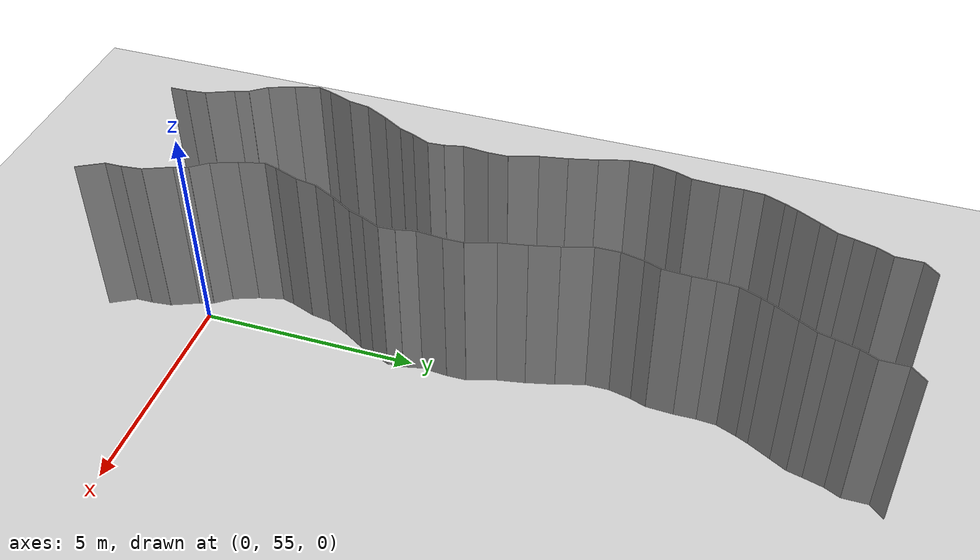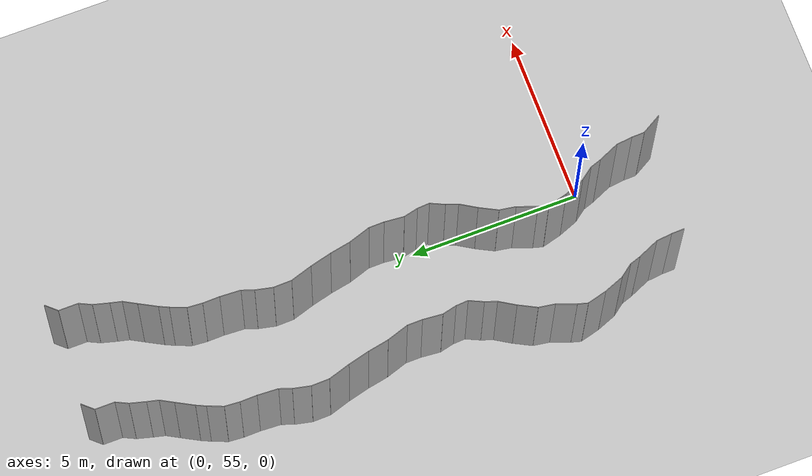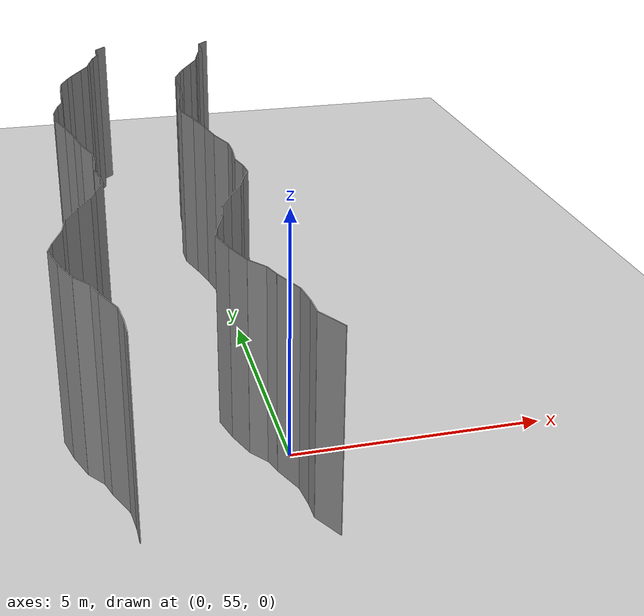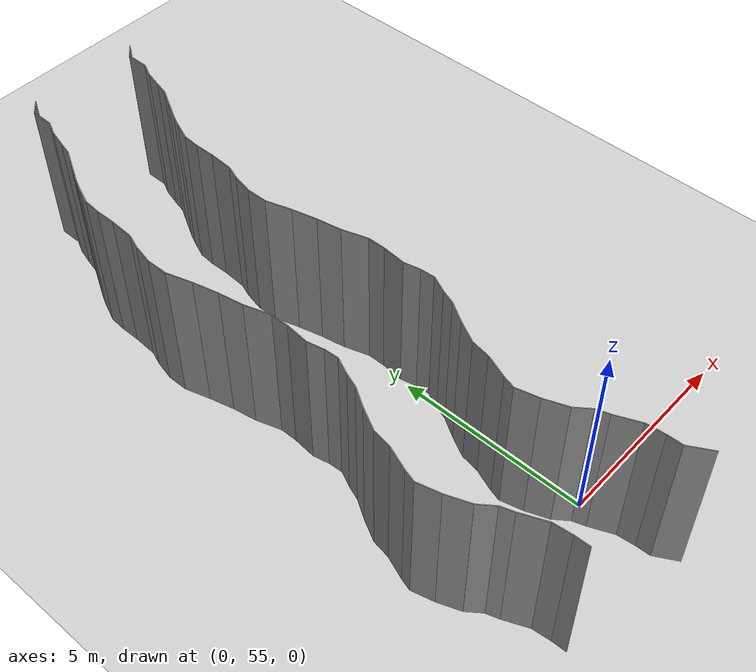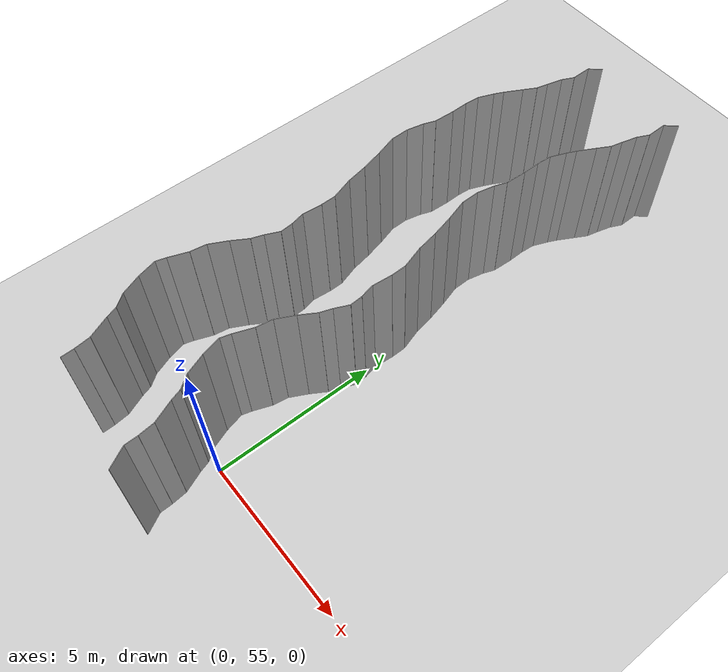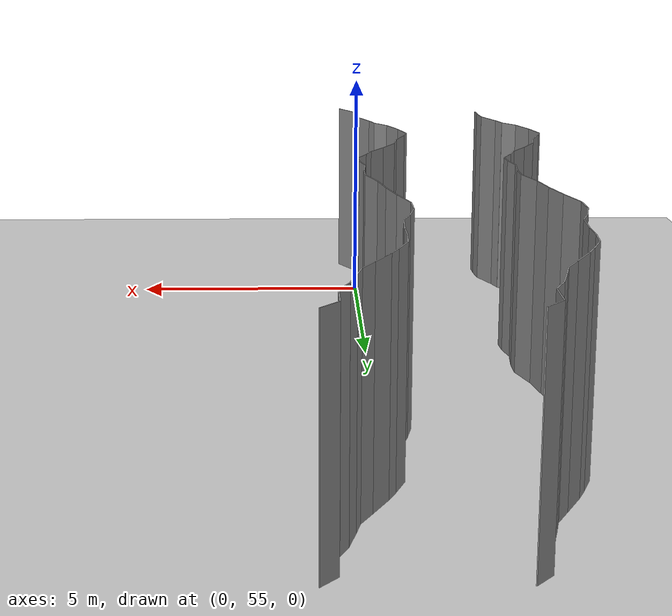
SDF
<sdf version="1.6">
 <world name="default">
  <model name="ground_plane">
   <static>1</static>
   <link name="link">
    <collision name="collision">
     <geometry><plane><normal>0 0 1</normal><size>200 200</size></plane></geometry>
     <surface><friction><ode><mu>100</mu><mu2>50</mu2></ode></friction></surface>
    </collision>
    <visual name="visual">
     <cast_shadows>0</cast_shadows>
     <geometry><plane><normal>0 0 1</normal><size>200 200</size></plane></geometry>
     <material>
      <script><uri>file://media/materials/scripts/gazebo.material</uri><name>Gazebo/Grey</name></script>
     </material>
    </visual>
   </link>
   <pose>0 100 0 0 -0 0</pose>
  </model>
  <model name="wall_225">
   <static>1</static>
   <pose>0.149944866546 52.8491950254 2 0 0 0.513343728631</pose>
   <link name="link">
    <collision name="collision"><geometry><box><size>0.02 0.649106825062 4</size></box></geometry></collision>
    <visual name="visual">
     <material>
      <script><name>Gazebo/Grey</name><uri>file://media/materials/scripts/gazebo.material</uri></script>
     </material>
     <geometry><box><size>0.02 0.649106825062 4</size></box></geometry>
    </visual>
   </link>
  </model>
  <model name="wall_226">
   <static>1</static>
   <pose>-3.01377925756 53.3214859877 2 0 0 0.0228809511871</pose>
   <link name="link">
    <collision name="collision"><geometry><box><size>0.02 0.379239499953 4</size></box></geometry></collision>
    <visual name="visual">
     <material>
      <script><name>Gazebo/Grey</name><uri>file://media/materials/scripts/gazebo.material</uri></script>
     </material>
     <geometry><box><size>0.02 0.379239499953 4</size></box></geometry>
    </visual>
   </link>
  </model>
  <model name="wall_227">
   <static>1</static>
   <pose>-0.0137792575616 53.3214859877 2 0 0 0.0228809511871</pose>
   <link name="link">
    <collision name="collision"><geometry><box><size>0.02 0.379239499953 4</size></box></geometry></collision>
    <visual name="visual">
     <material>
      <script><name>Gazebo/Grey</name><uri>file://media/materials/scripts/gazebo.material</uri></script>
     </material>
     <geometry><box><size>0.02 0.379239499953 4</size></box></geometry>
    </visual>
   </link>
  </model>
  <model name="wall_228">
   <static>1</static>
   <pose>-3.04320351989 53.7433817089 2 0 0 0.107560865783</pose>
   <link name="link">
    <collision name="collision"><geometry><box><size>0.02 0.467352083358 4</size></box></geometry></collision>
    <visual name="visual">
     <material>
      <script><name>Gazebo/Grey</name><uri>file://media/materials/scripts/gazebo.material</uri></script>
     </material>
     <geometry><box><size>0.02 0.467352083358 4</size></box></geometry>
    </visual>
   </link>
  </model>
  <model name="wall_229">
   <static>1</static>
   <pose>-0.0432035198901 53.7433817089 2 0 0 0.107560865783</pose>
   <link name="link">
    <collision name="collision"><geometry><box><size>0.02 0.467352083358 4</size></box></geometry></collision>
    <visual name="visual">
     <material>
      <script><name>Gazebo/Grey</name><uri>file://media/materials/scripts/gazebo.material</uri></script>
     </material>
     <geometry><box><size>0.02 0.467352083358 4</size></box></geometry>
    </visual>
   </link>
  </model>
  <model name="wall_230">
   <static>1</static>
   <pose>-3.19846778739 54.2792250066 2 0 0 0.405168139406</pose>
   <link name="link">
    <collision name="collision"><geometry><box><size>0.02 0.660513076087 4</size></box></geometry></collision>
    <visual name="visual">
     <material>
      <script><name>Gazebo/Grey</name><uri>file://media/materials/scripts/gazebo.material</uri></script>
     </material>
     <geometry><box><size>0.02 0.660513076087 4</size></box></geometry>
    </visual>
   </link>
  </model>
  <model name="wall_231">
   <static>1</static>
   <pose>-0.198467787391 54.2792250066 2 0 0 0.405168139406</pose>
   <link name="link">
    <collision name="collision"><geometry><box><size>0.02 0.660513076087 4</size></box></geometry></collision>
    <visual name="visual">
     <material>
      <script><name>Gazebo/Grey</name><uri>file://media/materials/scripts/gazebo.material</uri></script>
     </material>
     <geometry><box><size>0.02 0.660513076087 4</size></box></geometry>
    </visual>
   </link>
  </model>
  <model name="wall_232">
   <static>1</static>
   <pose>-3.38087966449 54.7423450676 2 0 0 0.316286510836</pose>
   <link name="link">
    <collision name="collision"><geometry><box><size>0.02 0.33586462782 4</size></box></geometry></collision>
    <visual name="visual">
     <material>
      <script><name>Gazebo/Grey</name><uri>file://media/materials/scripts/gazebo.material</uri></script>
     </material>
     <geometry><box><size>0.02 0.33586462782 4</size></box></geometry>
    </visual>
   </link>
  </model>
  <model name="wall_233">
   <static>1</static>
   <pose>-0.380879664487 54.7423450676 2 0 0 0.316286510836</pose>
   <link name="link">
    <collision name="collision"><geometry><box><size>0.02 0.33586462782 4</size></box></geometry></collision>
    <visual name="visual">
     <material>
      <script><name>Gazebo/Grey</name><uri>file://media/materials/scripts/gazebo.material</uri></script>
     </material>
     <geometry><box><size>0.02 0.33586462782 4</size></box></geometry>
    </visual>
   </link>
  </model>
  <model name="wall_234">
   <static>1</static>
   <pose>-3.56806964536 55.0815962635 2 0 0 0.644283653779</pose>
   <link name="link">
    <collision name="collision"><geometry><box><size>0.02 0.449385953446 4</size></box></geometry></collision>
    <visual name="visual">
     <material>
      <script><name>Gazebo/Grey</name><uri>file://media/materials/scripts/gazebo.material</uri></script>
     </material>
     <geometry><box><size>0.02 0.449385953446 4</size></box></geometry>
    </visual>
   </link>
  </model>
  <model name="wall_235">
   <static>1</static>
   <pose>-0.568069645365 55.0815962635 2 0 0 0.644283653779</pose>
   <link name="link">
    <collision name="collision"><geometry><box><size>0.02 0.449385953446 4</size></box></geometry></collision>
    <visual name="visual">
     <material>
      <script><name>Gazebo/Grey</name><uri>file://media/materials/scripts/gazebo.material</uri></script>
     </material>
     <geometry><box><size>0.02 0.449385953446 4</size></box></geometry>
    </visual>
   </link>
  </model>
  <model name="wall_236">
   <static>1</static>
   <pose>-3.81201777938 55.5483631325 2 0 0 0.362802655101</pose>
   <link name="link">
    <collision name="collision"><geometry><box><size>0.02 0.614218091026 4</size></box></geometry></collision>
    <visual name="visual">
     <material>
      <script><name>Gazebo/Grey</name><uri>file://media/materials/scripts/gazebo.material</uri></script>
     </material>
     <geometry><box><size>0.02 0.614218091026 4</size></box></geometry>
    </visual>
   </link>
  </model>
  <model name="wall_237">
   <static>1</static>
   <pose>-0.812017779385 55.5483631325 2 0 0 0.362802655101</pose>
   <link name="link">
    <collision name="collision"><geometry><box><size>0.02 0.614218091026 4</size></box></geometry></collision>
    <visual name="visual">
     <material>
      <script><name>Gazebo/Grey</name><uri>file://media/materials/scripts/gazebo.material</uri></script>
     </material>
     <geometry><box><size>0.02 0.614218091026 4</size></box></geometry>
    </visual>
   </link>
  </model>
  <model name="wall_238">
   <static>1</static>
   <pose>-3.99297944603 56.1185685923 2 0 0 0.248957947292</pose>
   <link name="link">
    <collision name="collision"><geometry><box><size>0.02 0.584185445969 4</size></box></geometry></collision>
    <visual name="visual">
     <material>
      <script><name>Gazebo/Grey</name><uri>file://media/materials/scripts/gazebo.material</uri></script>
     </material>
     <geometry><box><size>0.02 0.584185445969 4</size></box></geometry>
    </visual>
   </link>
  </model>
  <model name="wall_239">
   <static>1</static>
   <pose>-0.992979446029 56.1185685923 2 0 0 0.248957947292</pose>
   <link name="link">
    <collision name="collision"><geometry><box><size>0.02 0.584185445969 4</size></box></geometry></collision>
    <visual name="visual">
     <material>
      <script><name>Gazebo/Grey</name><uri>file://media/materials/scripts/gazebo.material</uri></script>
     </material>
     <geometry><box><size>0.02 0.584185445969 4</size></box></geometry>
    </visual>
   </link>
  </model>
  <model name="wall_240">
   <static>1</static>
   <pose>-4.02407525101 56.5490373277 2 0 0 -0.270536628729</pose>
   <link name="link">
    <collision name="collision"><geometry><box><size>0.02 0.305888528537 4</size></box></geometry></collision>
    <visual name="visual">
     <material>
      <script><name>Gazebo/Grey</name><uri>file://media/materials/scripts/gazebo.material</uri></script>
     </material>
     <geometry><box><size>0.02 0.305888528537 4</size></box></geometry>
    </visual>
   </link>
  </model>
  <model name="wall_241">
   <static>1</static>
   <pose>-1.02407525101 56.5490373277 2 0 0 -0.270536628729</pose>
   <link name="link">
    <collision name="collision"><geometry><box><size>0.02 0.305888528537 4</size></box></geometry></collision>
    <visual name="visual">
     <material>
      <script><name>Gazebo/Grey</name><uri>file://media/materials/scripts/gazebo.material</uri></script>
     </material>
     <geometry><box><size>0.02 0.305888528537 4</size></box></geometry>
    </visual>
   </link>
  </model>
  <model name="wall_242">
   <static>1</static>
   <pose>-3.87671459192 56.9803281657 2 0 0 -0.358833820466</pose>
   <link name="link">
    <collision name="collision"><geometry><box><size>0.02 0.606445363981 4</size></box></geometry></collision>
    <visual name="visual">
     <material>
      <script><name>Gazebo/Grey</name><uri>file://media/materials/scripts/gazebo.material</uri></script>
     </material>
     <geometry><box><size>0.02 0.606445363981 4</size></box></geometry>
    </visual>
   </link>
  </model>
  <model name="wall_243">
   <static>1</static>
   <pose>-0.876714591916 56.9803281657 2 0 0 -0.358833820466</pose>
   <link name="link">
    <collision name="collision"><geometry><box><size>0.02 0.606445363981 4</size></box></geometry></collision>
    <visual name="visual">
     <material>
      <script><name>Gazebo/Grey</name><uri>file://media/materials/scripts/gazebo.material</uri></script>
     </material>
     <geometry><box><size>0.02 0.606445363981 4</size></box></geometry>
    </visual>
   </link>
  </model>
  <model name="wall_244">
   <static>1</static>
   <pose>-3.7324479776 57.5023618886 2 0 0 -0.157345600843</pose>
   <link name="link">
    <collision name="collision"><geometry><box><size>0.02 0.482205231346 4</size></box></geometry></collision>
    <visual name="visual">
     <material>
      <script><name>Gazebo/Grey</name><uri>file://media/materials/scripts/gazebo.material</uri></script>
     </material>
     <geometry><box><size>0.02 0.482205231346 4</size></box></geometry>
    </visual>
   </link>
  </model>
  <model name="wall_245">
   <static>1</static>
   <pose>-0.732447977599 57.5023618886 2 0 0 -0.157345600843</pose>
   <link name="link">
    <collision name="collision"><geometry><box><size>0.02 0.482205231346 4</size></box></geometry></collision>
    <visual name="visual">
     <material>
      <script><name>Gazebo/Grey</name><uri>file://media/materials/scripts/gazebo.material</uri></script>
     </material>
     <geometry><box><size>0.02 0.482205231346 4</size></box></geometry>
    </visual>
   </link>
  </model>
  <model name="wall_246">
   <static>1</static>
   <pose>-3.5593689004 58.0019451023 2 0 0 -0.477531129132</pose>
   <link name="link">
    <collision name="collision"><geometry><box><size>0.02 0.588783931541 4</size></box></geometry></collision>
    <visual name="visual">
     <material>
      <script><name>Gazebo/Grey</name><uri>file://media/materials/scripts/gazebo.material</uri></script>
     </material>
     <geometry><box><size>0.02 0.588783931541 4</size></box></geometry>
    </visual>
   </link>
  </model>
  <model name="wall_247">
   <static>1</static>
   <pose>-0.559368900399 58.0019451023 2 0 0 -0.477531129132</pose>
   <link name="link">
    <collision name="collision"><geometry><box><size>0.02 0.588783931541 4</size></box></geometry></collision>
    <visual name="visual">
     <material>
      <script><name>Gazebo/Grey</name><uri>file://media/materials/scripts/gazebo.material</uri></script>
     </material>
     <geometry><box><size>0.02 0.588783931541 4</size></box></geometry>
    </visual>
   </link>
  </model>
  <model name="wall_248">
   <static>1</static>
   <pose>-3.28107609997 58.4974651793 2 0 0 -0.548414072508</pose>
   <link name="link">
    <collision name="collision"><geometry><box><size>0.02 0.548568370105 4</size></box></geometry></collision>
    <visual name="visual">
     <material>
      <script><name>Gazebo/Grey</name><uri>file://media/materials/scripts/gazebo.material</uri></script>
     </material>
     <geometry><box><size>0.02 0.548568370105 4</size></box></geometry>
    </visual>
   </link>
  </model>
  <model name="wall_249">
   <static>1</static>
   <pose>-0.281076099966 58.4974651793 2 0 0 -0.548414072508</pose>
   <link name="link">
    <collision name="collision"><geometry><box><size>0.02 0.548568370105 4</size></box></geometry></collision>
    <visual name="visual">
     <material>
      <script><name>Gazebo/Grey</name><uri>file://media/materials/scripts/gazebo.material</uri></script>
     </material>
     <geometry><box><size>0.02 0.548568370105 4</size></box></geometry>
    </visual>
   </link>
  </model>
  <model name="wall_250">
   <static>1</static>
   <pose>-3.07834124819 58.9033804938 2 0 0 -0.334558489554</pose>
   <link name="link">
    <collision name="collision"><geometry><box><size>0.02 0.363883904891 4</size></box></geometry></collision>
    <visual name="visual">
     <material>
      <script><name>Gazebo/Grey</name><uri>file://media/materials/scripts/gazebo.material</uri></script>
     </material>
     <geometry><box><size>0.02 0.363883904891 4</size></box></geometry>
    </visual>
   </link>
  </model>
  <model name="wall_251">
   <static>1</static>
   <pose>-0.0783412481883 58.9033804938 2 0 0 -0.334558489554</pose>
   <link name="link">
    <collision name="collision"><geometry><box><size>0.02 0.363883904891 4</size></box></geometry></collision>
    <visual name="visual">
     <material>
      <script><name>Gazebo/Grey</name><uri>file://media/materials/scripts/gazebo.material</uri></script>
     </material>
     <geometry><box><size>0.02 0.363883904891 4</size></box></geometry>
    </visual>
   </link>
  </model>
  <model name="wall_252">
   <static>1</static>
   <pose>-2.92414382023 59.281174208 2 0 0 -0.430032995577</pose>
   <link name="link">
    <collision name="collision"><geometry><box><size>0.02 0.453136066216 4</size></box></geometry></collision>
    <visual name="visual">
     <material>
      <script><name>Gazebo/Grey</name><uri>file://media/materials/scripts/gazebo.material</uri></script>
     </material>
     <geometry><box><size>0.02 0.453136066216 4</size></box></geometry>
    </visual>
   </link>
  </model>
  <model name="wall_253">
   <static>1</static>
   <pose>0.0758561797709 59.281174208 2 0 0 -0.430032995577</pose>
   <link name="link">
    <collision name="collision"><geometry><box><size>0.02 0.453136066216 4</size></box></geometry></collision>
    <visual name="visual">
     <material>
      <script><name>Gazebo/Grey</name><uri>file://media/materials/scripts/gazebo.material</uri></script>
     </material>
     <geometry><box><size>0.02 0.453136066216 4</size></box></geometry>
    </visual>
   </link>
  </model>
  <model name="wall_254">
   <static>1</static>
   <pose>-2.84137743415 59.6702618116 2 0 0 0.0637416819429</pose>
   <link name="link">
    <collision name="collision"><geometry><box><size>0.02 0.36704166924 4</size></box></geometry></collision>
    <visual name="visual">
     <material>
      <script><name>Gazebo/Grey</name><uri>file://media/materials/scripts/gazebo.material</uri></script>
     </material>
     <geometry><box><size>0.02 0.36704166924 4</size></box></geometry>
    </visual>
   </link>
  </model>
  <model name="wall_255">
   <static>1</static>
   <pose>0.158622565851 59.6702618116 2 0 0 0.0637416819429</pose>
   <link name="link">
    <collision name="collision"><geometry><box><size>0.02 0.36704166924 4</size></box></geometry></collision>
    <visual name="visual">
     <material>
      <script><name>Gazebo/Grey</name><uri>file://media/materials/scripts/gazebo.material</uri></script>
     </material>
     <geometry><box><size>0.02 0.36704166924 4</size></box></geometry>
    </visual>
   </link>
  </model>
  <model name="wall_256">
   <static>1</static>
   <pose>-2.89969391129 60.0623899281 2 0 0 0.219519104804</pose>
   <link name="link">
    <collision name="collision"><geometry><box><size>0.02 0.428236659387 4</size></box></geometry></collision>
    <visual name="visual">
     <material>
      <script><name>Gazebo/Grey</name><uri>file://media/materials/scripts/gazebo.material</uri></script>
     </material>
     <geometry><box><size>0.02 0.428236659387 4</size></box></geometry>
    </visual>
   </link>
  </model>
  <model name="wall_257">
   <static>1</static>
   <pose>0.10030608871 60.0623899281 2 0 0 0.219519104804</pose>
   <link name="link">
    <collision name="collision"><geometry><box><size>0.02 0.428236659387 4</size></box></geometry></collision>
    <visual name="visual">
     <material>
      <script><name>Gazebo/Grey</name><uri>file://media/materials/scripts/gazebo.material</uri></script>
     </material>
     <geometry><box><size>0.02 0.428236659387 4</size></box></geometry>
    </visual>
   </link>
  </model>
  <model name="wall_258">
   <static>1</static>
   <pose>-2.92069979378 60.5654220908 2 0 0 -0.0869099083417</pose>
   <link name="link">
    <collision name="collision"><geometry><box><size>0.02 0.590332454041 4</size></box></geometry></collision>
    <visual name="visual">
     <material>
      <script><name>Gazebo/Grey</name><uri>file://media/materials/scripts/gazebo.material</uri></script>
     </material>
     <geometry><box><size>0.02 0.590332454041 4</size></box></geometry>
    </visual>
   </link>
  </model>
  <model name="wall_259">
   <static>1</static>
   <pose>0.0793002062209 60.5654220908 2 0 0 -0.0869099083417</pose>
   <link name="link">
    <collision name="collision"><geometry><box><size>0.02 0.590332454041 4</size></box></geometry></collision>
    <visual name="visual">
     <material>
      <script><name>Gazebo/Grey</name><uri>file://media/materials/scripts/gazebo.material</uri></script>
     </material>
     <geometry><box><size>0.02 0.590332454041 4</size></box></geometry>
    </visual>
   </link>
  </model>
  <model name="wall_260">
   <static>1</static>
   <pose>-2.89828544259 61.0837082043 2 0 0 0.0142976496149</pose>
   <link name="link">
    <collision name="collision"><geometry><box><size>0.02 0.448513700958 4</size></box></geometry></collision>
    <visual name="visual">
     <material>
      <script><name>Gazebo/Grey</name><uri>file://media/materials/scripts/gazebo.material</uri></script>
     </material>
     <geometry><box><size>0.02 0.448513700958 4</size></box></geometry>
    </visual>
   </link>
  </model>
  <model name="wall_261">
   <static>1</static>
   <pose>0.101714557412 61.0837082043 2 0 0 0.0142976496149</pose>
   <link name="link">
    <collision name="collision"><geometry><box><size>0.02 0.448513700958 4</size></box></geometry></collision>
    <visual name="visual">
     <material>
      <script><name>Gazebo/Grey</name><uri>file://media/materials/scripts/gazebo.material</uri></script>
     </material>
     <geometry><box><size>0.02 0.448513700958 4</size></box></geometry>
    </visual>
   </link>
  </model>
  <model name="wall_262">
   <static>1</static>
   <pose>-3.00380422749 61.6297005721 2 0 0 0.307868941189</pose>
   <link name="link">
    <collision name="collision"><geometry><box><size>0.02 0.675266911248 4</size></box></geometry></collision>
    <visual name="visual">
     <material>
      <script><name>Gazebo/Grey</name><uri>file://media/materials/scripts/gazebo.material</uri></script>
     </material>
     <geometry><box><size>0.02 0.675266911248 4</size></box></geometry>
    </visual>
   </link>
  </model>
  <model name="wall_263">
   <static>1</static>
   <pose>-0.00380422749455 61.6297005721 2 0 0 0.307868941189</pose>
   <link name="link">
    <collision name="collision"><geometry><box><size>0.02 0.675266911248 4</size></box></geometry></collision>
    <visual name="visual">
     <material>
      <script><name>Gazebo/Grey</name><uri>file://media/materials/scripts/gazebo.material</uri></script>
     </material>
     <geometry><box><size>0.02 0.675266911248 4</size></box></geometry>
    </visual>
   </link>
  </model>
  <model name="wall_264">
   <static>1</static>
   <pose>-3.16341183914 62.2607153151 2 0 0 0.183190154677</pose>
   <link name="link">
    <collision name="collision"><geometry><box><size>0.02 0.629037951305 4</size></box></geometry></collision>
    <visual name="visual">
     <material>
      <script><name>Gazebo/Grey</name><uri>file://media/materials/scripts/gazebo.material</uri></script>
     </material>
     <geometry><box><size>0.02 0.629037951305 4</size></box></geometry>
    </visual>
   </link>
  </model>
  <model name="wall_265">
   <static>1</static>
   <pose>-0.163411839135 62.2607153151 2 0 0 0.183190154677</pose>
   <link name="link">
    <collision name="collision"><geometry><box><size>0.02 0.629037951305 4</size></box></geometry></collision>
    <visual name="visual">
     <material>
      <script><name>Gazebo/Grey</name><uri>file://media/materials/scripts/gazebo.material</uri></script>
     </material>
     <geometry><box><size>0.02 0.629037951305 4</size></box></geometry>
    </visual>
   </link>
  </model>
  <model name="wall_266">
   <static>1</static>
   <pose>-3.29953102862 62.8866438823 2 0 0 0.243956184905</pose>
   <link name="link">
    <collision name="collision"><geometry><box><size>0.02 0.65267010023 4</size></box></geometry></collision>
    <visual name="visual">
     <material>
      <script><name>Gazebo/Grey</name><uri>file://media/materials/scripts/gazebo.material</uri></script>
     </material>
     <geometry><box><size>0.02 0.65267010023 4</size></box></geometry>
    </visual>
   </link>
  </model>
  <model name="wall_267">
   <static>1</static>
   <pose>-0.29953102862 62.8866438823 2 0 0 0.243956184905</pose>
   <link name="link">
    <collision name="collision"><geometry><box><size>0.02 0.65267010023 4</size></box></geometry></collision>
    <visual name="visual">
     <material>
      <script><name>Gazebo/Grey</name><uri>file://media/materials/scripts/gazebo.material</uri></script>
     </material>
     <geometry><box><size>0.02 0.65267010023 4</size></box></geometry>
    </visual>
   </link>
  </model>
  <model name="wall_268">
   <static>1</static>
   <pose>-3.47598404169 63.5248189745 2 0 0 0.294815010806</pose>
   <link name="link">
    <collision name="collision"><geometry><box><size>0.02 0.671998419147 4</size></box></geometry></collision>
    <visual name="visual">
     <material>
      <script><name>Gazebo/Grey</name><uri>file://media/materials/scripts/gazebo.material</uri></script>
     </material>
     <geometry><box><size>0.02 0.671998419147 4</size></box></geometry>
    </visual>
   </link>
  </model>
  <model name="wall_269">
   <static>1</static>
   <pose>-0.475984041694 63.5248189745 2 0 0 0.294815010806</pose>
   <link name="link">
    <collision name="collision"><geometry><box><size>0.02 0.671998419147 4</size></box></geometry></collision>
    <visual name="visual">
     <material>
      <script><name>Gazebo/Grey</name><uri>file://media/materials/scripts/gazebo.material</uri></script>
     </material>
     <geometry><box><size>0.02 0.671998419147 4</size></box></geometry>
    </visual>
   </link>
  </model>
  <model name="wall_270">
   <static>1</static>
   <pose>-3.57844795209 64.1140281343 2 0 0 0.0180589596446</pose>
   <link name="link">
    <collision name="collision"><geometry><box><size>0.02 0.535499978793 4</size></box></geometry></collision>
    <visual name="visual">
     <material>
      <script><name>Gazebo/Grey</name><uri>file://media/materials/scripts/gazebo.material</uri></script>
     </material>
     <geometry><box><size>0.02 0.535499978793 4</size></box></geometry>
    </visual>
   </link>
  </model>
  <model name="wall_271">
   <static>1</static>
   <pose>-0.578447952087 64.1140281343 2 0 0 0.0180589596446</pose>
   <link name="link">
    <collision name="collision"><geometry><box><size>0.02 0.535499978793 4</size></box></geometry></collision>
    <visual name="visual">
     <material>
      <script><name>Gazebo/Grey</name><uri>file://media/materials/scripts/gazebo.material</uri></script>
     </material>
     <geometry><box><size>0.02 0.535499978793 4</size></box></geometry>
    </visual>
   </link>
  </model>
  <model name="wall_272">
   <static>1</static>
   <pose>-3.52740384847 64.6381819299 2 0 0 -0.214543485008</pose>
   <link name="link">
    <collision name="collision"><geometry><box><size>0.02 0.524929630404 4</size></box></geometry></collision>
    <visual name="visual">
     <material>
      <script><name>Gazebo/Grey</name><uri>file://media/materials/scripts/gazebo.material</uri></script>
     </material>
     <geometry><box><size>0.02 0.524929630404 4</size></box></geometry>
    </visual>
   </link>
  </model>
  <model name="wall_273">
   <static>1</static>
   <pose>-0.527403848469 64.6381819299 2 0 0 -0.214543485008</pose>
   <link name="link">
    <collision name="collision"><geometry><box><size>0.02 0.524929630404 4</size></box></geometry></collision>
    <visual name="visual">
     <material>
      <script><name>Gazebo/Grey</name><uri>file://media/materials/scripts/gazebo.material</uri></script>
     </material>
     <geometry><box><size>0.02 0.524929630404 4</size></box></geometry>
    </visual>
   </link>
  </model>
  <model name="wall_274">
   <static>1</static>
   <pose>-3.40708053676 65.0730718691 2 0 0 -0.346571705738</pose>
   <link name="link">
    <collision name="collision"><geometry><box><size>0.02 0.379445751093 4</size></box></geometry></collision>
    <visual name="visual">
     <material>
      <script><name>Gazebo/Grey</name><uri>file://media/materials/scripts/gazebo.material</uri></script>
     </material>
     <geometry><box><size>0.02 0.379445751093 4</size></box></geometry>
    </visual>
   </link>
  </model>
  <model name="wall_275">
   <static>1</static>
   <pose>-0.407080536762 65.0730718691 2 0 0 -0.346571705738</pose>
   <link name="link">
    <collision name="collision"><geometry><box><size>0.02 0.379445751093 4</size></box></geometry></collision>
    <visual name="visual">
     <material>
      <script><name>Gazebo/Grey</name><uri>file://media/materials/scripts/gazebo.material</uri></script>
     </material>
     <geometry><box><size>0.02 0.379445751093 4</size></box></geometry>
    </visual>
   </link>
  </model>
  <model name="wall_276">
   <static>1</static>
   <pose>-3.32713891278 65.5607195996 2 0 0 -0.0500783276492</pose>
   <link name="link">
    <collision name="collision"><geometry><box><size>0.02 0.619186760777 4</size></box></geometry></collision>
    <visual name="visual">
     <material>
      <script><name>Gazebo/Grey</name><uri>file://media/materials/scripts/gazebo.material</uri></script>
     </material>
     <geometry><box><size>0.02 0.619186760777 4</size></box></geometry>
    </visual>
   </link>
  </model>
  <model name="wall_277">
   <static>1</static>
   <pose>-0.32713891278 65.5607195996 2 0 0 -0.0500783276492</pose>
   <link name="link">
    <collision name="collision"><geometry><box><size>0.02 0.619186760777 4</size></box></geometry></collision>
    <visual name="visual">
     <material>
      <script><name>Gazebo/Grey</name><uri>file://media/materials/scripts/gazebo.material</uri></script>
     </material>
     <geometry><box><size>0.02 0.619186760777 4</size></box></geometry>
    </visual>
   </link>
  </model>
  <model name="wall_278">
   <static>1</static>
   <pose>-3.31606490762 66.1196539245 2 0 0 0.0177110805129</pose>
   <link name="link">
    <collision name="collision"><geometry><box><size>0.02 0.499536482942 4</size></box></geometry></collision>
    <visual name="visual">
     <material>
      <script><name>Gazebo/Grey</name><uri>file://media/materials/scripts/gazebo.material</uri></script>
     </material>
     <geometry><box><size>0.02 0.499536482942 4</size></box></geometry>
    </visual>
   </link>
  </model>
  <model name="wall_279">
   <static>1</static>
   <pose>-0.316064907615 66.1196539245 2 0 0 0.0177110805129</pose>
   <link name="link">
    <collision name="collision"><geometry><box><size>0.02 0.499536482942 4</size></box></geometry></collision>
    <visual name="visual">
     <material>
      <script><name>Gazebo/Grey</name><uri>file://media/materials/scripts/gazebo.material</uri></script>
     </material>
     <geometry><box><size>0.02 0.499536482942 4</size></box></geometry>
    </visual>
   </link>
  </model>
  <model name="wall_280">
   <static>1</static>
   <pose>-3.30427170229 66.5922849775 2 0 0 -0.0726243825246</pose>
   <link name="link">
    <collision name="collision"><geometry><box><size>0.02 0.446982210203 4</size></box></geometry></collision>
    <visual name="visual">
     <material>
      <script><name>Gazebo/Grey</name><uri>file://media/materials/scripts/gazebo.material</uri></script>
     </material>
     <geometry><box><size>0.02 0.446982210203 4</size></box></geometry>
    </visual>
   </link>
  </model>
  <model name="wall_281">
   <static>1</static>
   <pose>-0.304271702291 66.5922849775 2 0 0 -0.0726243825246</pose>
   <link name="link">
    <collision name="collision"><geometry><box><size>0.02 0.446982210203 4</size></box></geometry></collision>
    <visual name="visual">
     <material>
      <script><name>Gazebo/Grey</name><uri>file://media/materials/scripts/gazebo.material</uri></script>
     </material>
     <geometry><box><size>0.02 0.446982210203 4</size></box></geometry>
    </visual>
   </link>
  </model>
  <model name="wall_282">
   <static>1</static>
   <pose>-3.19745118576 67.0421009183 2 0 0 -0.379891890682</pose>
   <link name="link">
    <collision name="collision"><geometry><box><size>0.02 0.488667601258 4</size></box></geometry></collision>
    <visual name="visual">
     <material>
      <script><name>Gazebo/Grey</name><uri>file://media/materials/scripts/gazebo.material</uri></script>
     </material>
     <geometry><box><size>0.02 0.488667601258 4</size></box></geometry>
    </visual>
   </link>
  </model>
  <model name="wall_283">
   <static>1</static>
   <pose>-0.19745118576 67.0421009183 2 0 0 -0.379891890682</pose>
   <link name="link">
    <collision name="collision"><geometry><box><size>0.02 0.488667601258 4</size></box></geometry></collision>
    <visual name="visual">
     <material>
      <script><name>Gazebo/Grey</name><uri>file://media/materials/scripts/gazebo.material</uri></script>
     </material>
     <geometry><box><size>0.02 0.488667601258 4</size></box></geometry>
    </visual>
   </link>
  </model>
  <model name="wall_284">
   <static>1</static>
   <pose>-3.04355767184 67.4055388659 2 0 0 -0.434088557625</pose>
   <link name="link">
    <collision name="collision"><geometry><box><size>0.02 0.300960983012 4</size></box></geometry></collision>
    <visual name="visual">
     <material>
      <script><name>Gazebo/Grey</name><uri>file://media/materials/scripts/gazebo.material</uri></script>
     </material>
     <geometry><box><size>0.02 0.300960983012 4</size></box></geometry>
    </visual>
   </link>
  </model>
  <model name="wall_285">
   <static>1</static>
   <pose>-0.0435576718426 67.4055388659 2 0 0 -0.434088557625</pose>
   <link name="link">
    <collision name="collision"><geometry><box><size>0.02 0.300960983012 4</size></box></geometry></collision>
    <visual name="visual">
     <material>
      <script><name>Gazebo/Grey</name><uri>file://media/materials/scripts/gazebo.material</uri></script>
     </material>
     <geometry><box><size>0.02 0.300960983012 4</size></box></geometry>
    </visual>
   </link>
  </model>
  <model name="wall_286">
   <static>1</static>
   <pose>-2.84124015137 67.7967749944 2 0 0 -0.49963107145</pose>
   <link name="link">
    <collision name="collision"><geometry><box><size>0.02 0.58036893534 4</size></box></geometry></collision>
    <visual name="visual">
     <material>
      <script><name>Gazebo/Grey</name><uri>file://media/materials/scripts/gazebo.material</uri></script>
     </material>
     <geometry><box><size>0.02 0.58036893534 4</size></box></geometry>
    </visual>
   </link>
  </model>
  <model name="wall_287">
   <static>1</static>
   <pose>0.158759848627 67.7967749944 2 0 0 -0.49963107145</pose>
   <link name="link">
    <collision name="collision"><geometry><box><size>0.02 0.58036893534 4</size></box></geometry></collision>
    <visual name="visual">
     <material>
      <script><name>Gazebo/Grey</name><uri>file://media/materials/scripts/gazebo.material</uri></script>
     </material>
     <geometry><box><size>0.02 0.58036893534 4</size></box></geometry>
    </visual>
   </link>
  </model>
  <model name="wall_288">
   <static>1</static>
   <pose>-2.59829702599 68.2392224698 2 0 0 -0.505541596549</pose>
   <link name="link">
    <collision name="collision"><geometry><box><size>0.02 0.429152349042 4</size></box></geometry></collision>
    <visual name="visual">
     <material>
      <script><name>Gazebo/Grey</name><uri>file://media/materials/scripts/gazebo.material</uri></script>
     </material>
     <geometry><box><size>0.02 0.429152349042 4</size></box></geometry>
    </visual>
   </link>
  </model>
  <model name="wall_289">
   <static>1</static>
   <pose>0.401702974014 68.2392224698 2 0 0 -0.505541596549</pose>
   <link name="link">
    <collision name="collision"><geometry><box><size>0.02 0.429152349042 4</size></box></geometry></collision>
    <visual name="visual">
     <material>
      <script><name>Gazebo/Grey</name><uri>file://media/materials/scripts/gazebo.material</uri></script>
     </material>
     <geometry><box><size>0.02 0.429152349042 4</size></box></geometry>
    </visual>
   </link>
  </model>
  <model name="wall_290">
   <static>1</static>
   <pose>-2.45366950478 68.5960314119 2 0 0 -0.236297670405</pose>
   <link name="link">
    <collision name="collision"><geometry><box><size>0.02 0.347812439243 4</size></box></geometry></collision>
    <visual name="visual">
     <material>
      <script><name>Gazebo/Grey</name><uri>file://media/materials/scripts/gazebo.material</uri></script>
     </material>
     <geometry><box><size>0.02 0.347812439243 4</size></box></geometry>
    </visual>
   </link>
  </model>
  <model name="wall_291">
   <static>1</static>
   <pose>0.546330495216 68.5960314119 2 0 0 -0.236297670405</pose>
   <link name="link">
    <collision name="collision"><geometry><box><size>0.02 0.347812439243 4</size></box></geometry></collision>
    <visual name="visual">
     <material>
      <script><name>Gazebo/Grey</name><uri>file://media/materials/scripts/gazebo.material</uri></script>
     </material>
     <geometry><box><size>0.02 0.347812439243 4</size></box></geometry>
    </visual>
   </link>
  </model>
  <model name="wall_292">
   <static>1</static>
   <pose>-2.35033730433 68.9976558982 2 0 0 -0.263035099228</pose>
   <link name="link">
    <collision name="collision"><geometry><box><size>0.02 0.481668630724 4</size></box></geometry></collision>
    <visual name="visual">
     <material>
      <script><name>Gazebo/Grey</name><uri>file://media/materials/scripts/gazebo.material</uri></script>
     </material>
     <geometry><box><size>0.02 0.481668630724 4</size></box></geometry>
    </visual>
   </link>
  </model>
  <model name="wall_293">
   <static>1</static>
   <pose>0.649662695671 68.9976558982 2 0 0 -0.263035099228</pose>
   <link name="link">
    <collision name="collision"><geometry><box><size>0.02 0.481668630724 4</size></box></geometry></collision>
    <visual name="visual">
     <material>
      <script><name>Gazebo/Grey</name><uri>file://media/materials/scripts/gazebo.material</uri></script>
     </material>
     <geometry><box><size>0.02 0.481668630724 4</size></box></geometry>
    </visual>
   </link>
  </model>
  <model name="wall_294">
   <static>1</static>
   <pose>-2.20373252649 69.4067172035 2 0 0 -0.444106394639</pose>
   <link name="link">
    <collision name="collision"><geometry><box><size>0.02 0.390944423345 4</size></box></geometry></collision>
    <visual name="visual">
     <material>
      <script><name>Gazebo/Grey</name><uri>file://media/materials/scripts/gazebo.material</uri></script>
     </material>
     <geometry><box><size>0.02 0.390944423345 4</size></box></geometry>
    </visual>
   </link>
  </model>
  <model name="wall_295">
   <static>1</static>
   <pose>0.796267473508 69.4067172035 2 0 0 -0.444106394639</pose>
   <link name="link">
    <collision name="collision"><geometry><box><size>0.02 0.390944423345 4</size></box></geometry></collision>
    <visual name="visual">
     <material>
      <script><name>Gazebo/Grey</name><uri>file://media/materials/scripts/gazebo.material</uri></script>
     </material>
     <geometry><box><size>0.02 0.390944423345 4</size></box></geometry>
    </visual>
   </link>
  </model>
  <model name="wall_296">
   <static>1</static>
   <pose>-2.1207154933 69.8735399977 2 0 0 0.00333371949383</pose>
   <link name="link">
    <collision name="collision"><geometry><box><size>0.02 0.580627969113 4</size></box></geometry></collision>
    <visual name="visual">
     <material>
      <script><name>Gazebo/Grey</name><uri>file://media/materials/scripts/gazebo.material</uri></script>
     </material>
     <geometry><box><size>0.02 0.580627969113 4</size></box></geometry>
    </visual>
   </link>
  </model>
  <model name="wall_297">
   <static>1</static>
   <pose>0.879284506699 69.8735399977 2 0 0 0.00333371949383</pose>
   <link name="link">
    <collision name="collision"><geometry><box><size>0.02 0.580627969113 4</size></box></geometry></collision>
    <visual name="visual">
     <material>
      <script><name>Gazebo/Grey</name><uri>file://media/materials/scripts/gazebo.material</uri></script>
     </material>
     <geometry><box><size>0.02 0.580627969113 4</size></box></geometry>
    </visual>
   </link>
  </model>
  <model name="wall_298">
   <static>1</static>
   <pose>-1.97893273254 70.3222856379 2 0 0 -0.73337500925</pose>
   <link name="link">
    <collision name="collision"><geometry><box><size>0.02 0.426515322178 4</size></box></geometry></collision>
    <visual name="visual">
     <material>
      <script><name>Gazebo/Grey</name><uri>file://media/materials/scripts/gazebo.material</uri></script>
     </material>
     <geometry><box><size>0.02 0.426515322178 4</size></box></geometry>
    </visual>
   </link>
  </model>
  <model name="wall_299">
   <static>1</static>
   <pose>1.02106726746 70.3222856379 2 0 0 -0.73337500925</pose>
   <link name="link">
    <collision name="collision"><geometry><box><size>0.02 0.426515322178 4</size></box></geometry></collision>
    <visual name="visual">
     <material>
      <script><name>Gazebo/Grey</name><uri>file://media/materials/scripts/gazebo.material</uri></script>
     </material>
     <geometry><box><size>0.02 0.426515322178 4</size></box></geometry>
    </visual>
   </link>
  </model>
 </world>
</sdf>
